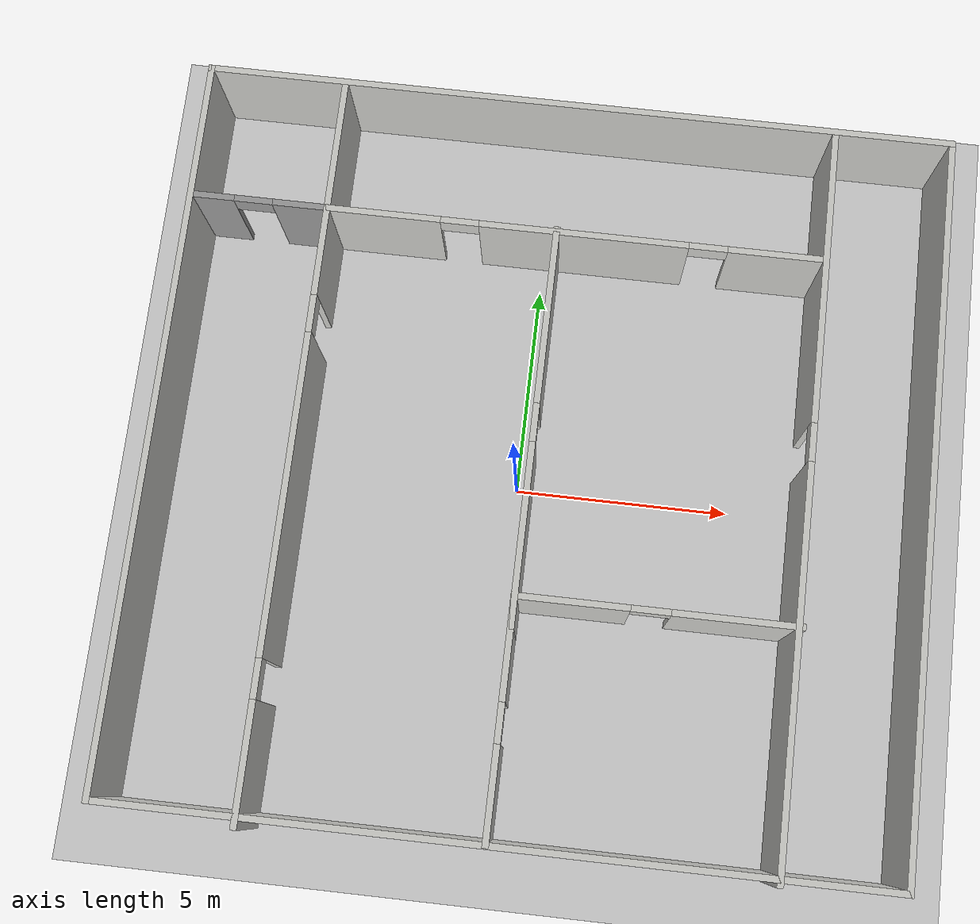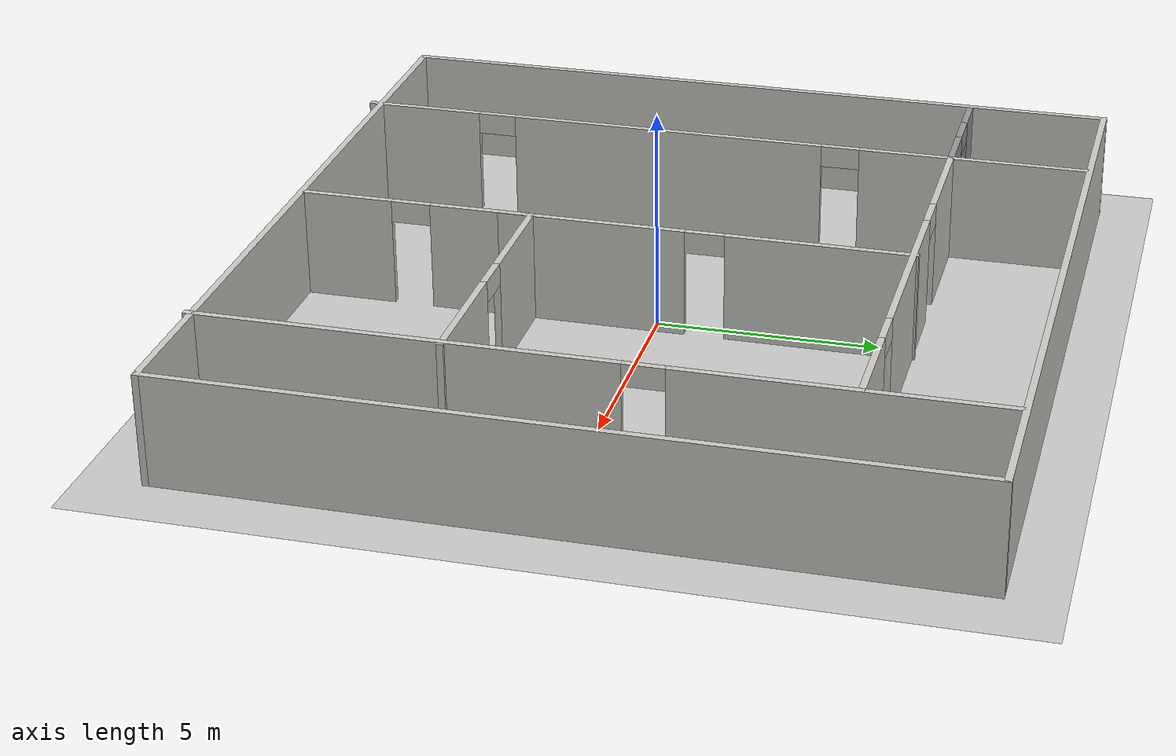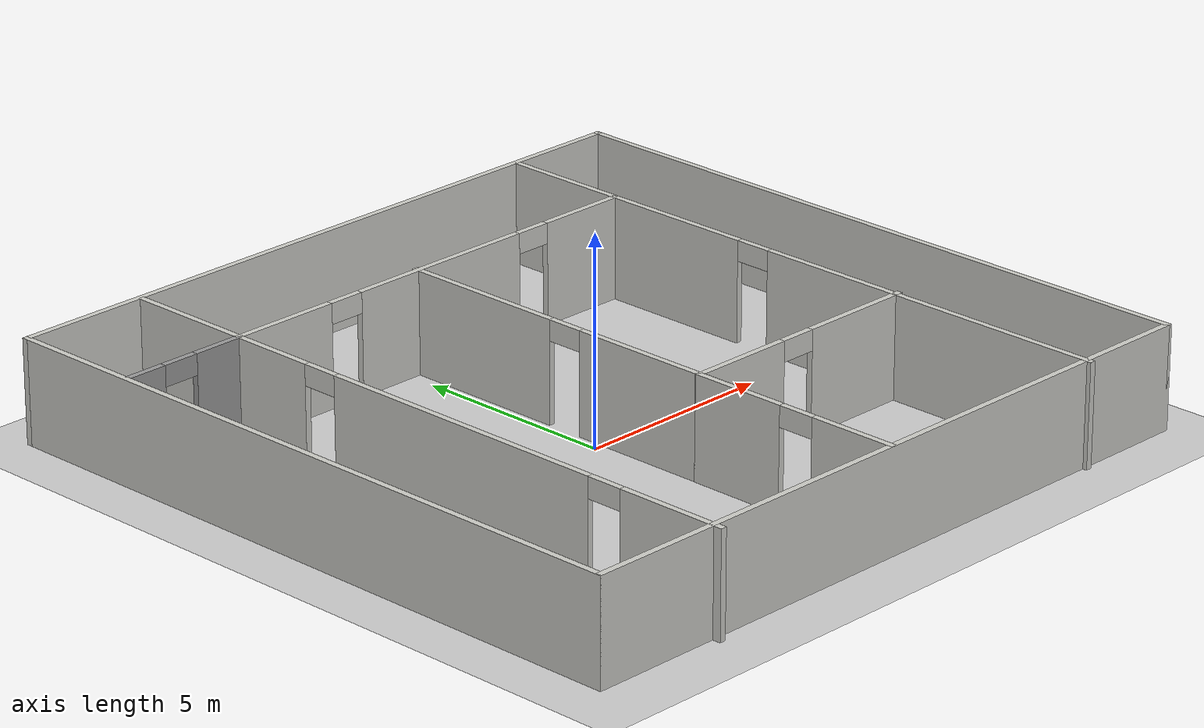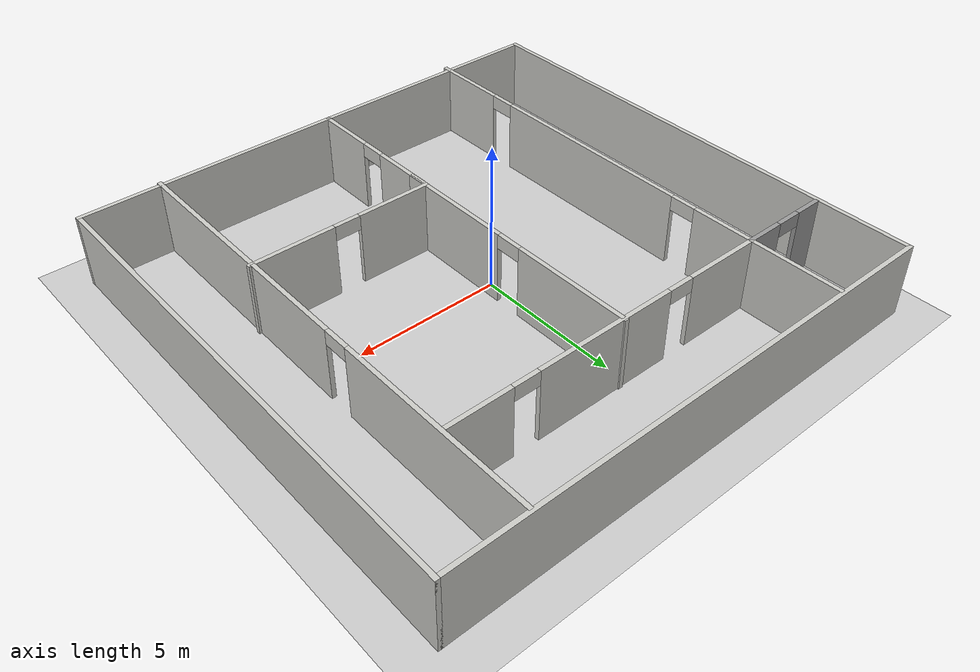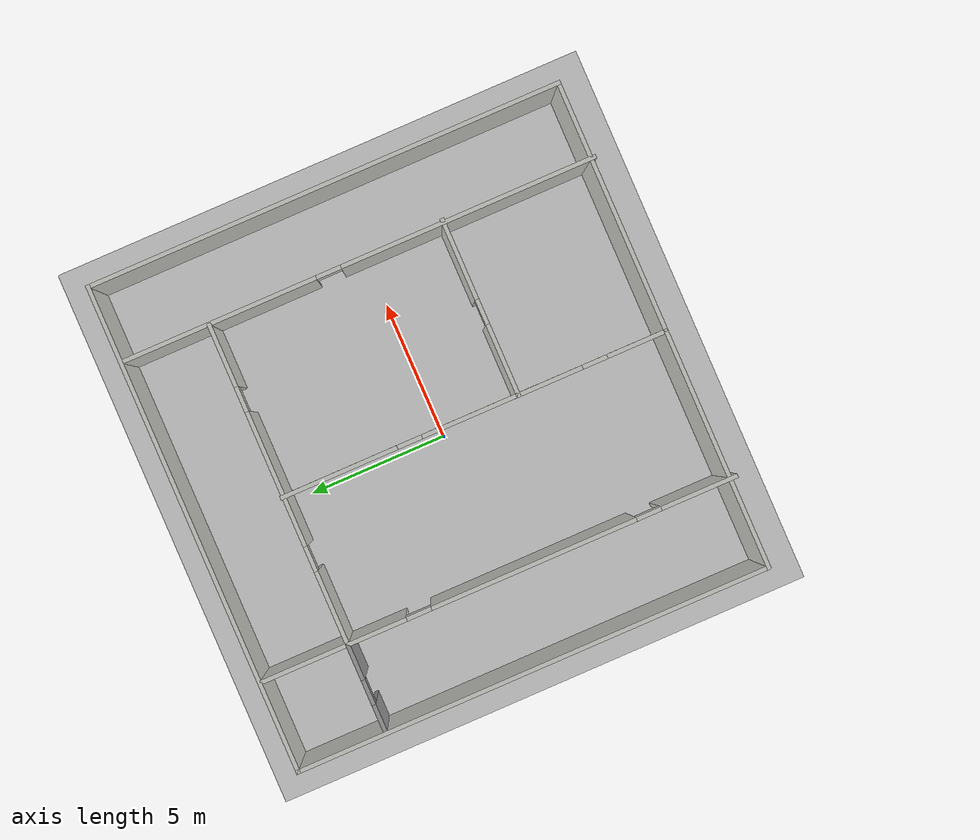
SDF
<sdf version="1.7">
 <world name="default">
  <light name="sun" type="directional">
   <pose>0 0 10 0 -0 0</pose>
   <diffuse>0.8 0.8 0.8 1</diffuse>
   <specular>0.2 0.2 0.2 1</specular>
   <attenuation>
    <range>1000</range>
    <constant>0.9</constant>
    <linear>0.01</linear>
    <quadratic>0.001</quadratic>
   </attenuation>
   <direction>-0.5 0.1 -0.9</direction>
   <spot><inner_angle>0</inner_angle><outer_angle>0</outer_angle><falloff>0</falloff></spot>
  </light>
  <model name="ground_plane">
   <static>1</static>
   <link name="link">
    <collision name="collision">
     <geometry><plane><normal>0 0 1</normal><size>100 100</size></plane></geometry>
     <surface><friction><ode><mu>100</mu><mu2>50</mu2></ode></friction></surface>
    </collision>
    <visual name="visual">
     <cast_shadows>0</cast_shadows>
     <geometry><plane><normal>0 0 1</normal><size>100 100</size></plane></geometry>
     <material>
      <script><uri>file://media/materials/scripts/gazebo.material</uri><name>Gazebo/Grey</name></script>
     </material>
    </visual>
   </link>
  </model>
  <gravity>0 0 -9.8</gravity>
  <magnetic_field>6e-06 2.3e-05 -4.2e-05</magnetic_field>
  <atmosphere type="adiabatic"/>
  <physics type="ode">
   <max_step_size>0.001</max_step_size>
   <real_time_factor>1</real_time_factor>
   <real_time_update_rate>1000</real_time_update_rate>
  </physics>
  <scene><ambient>0.4 0.4 0.4 1</ambient><background>0.7 0.7 0.7 1</background><shadows>1</shadows></scene>
  <spherical_coordinates>
   <surface_model>EARTH_WGS84</surface_model>
   <latitude_deg>0</latitude_deg>
   <longitude_deg>0</longitude_deg>
   <elevation>0</elevation>
   <heading_deg>0</heading_deg>
  </spherical_coordinates>
  <model name="jamworldp">
   <pose>0.508812 0.273361 0 0 -0 0</pose>
   <link name="Wall_29">
    <collision name="Wall_29_Collision">
     <geometry><box><size>17.75 0.15 2.5</size></box></geometry>
     <pose>0 0 1.25 0 -0 0</pose>
    </collision>
    <visual name="Wall_29_Visual">
     <pose>0 0 1.25 0 -0 0</pose>
     <geometry><box><size>17.75 0.15 2.5</size></box></geometry>
     <material>
      <script><uri>file://media/materials/scripts/gazebo.material</uri><name>Gazebo/CeilingTiled</name></script>
      <ambient>1 1 1 1</ambient>
     </material>
     <meta><layer>0</layer></meta>
    </visual>
    <pose>-0 8.65066 0 0 -0 0</pose>
   </link>
   <link name="Wall_31">
    <collision name="Wall_31_Collision">
     <geometry><box><size>17.25 0.15 2.5</size></box></geometry>
     <pose>0 0 1.25 0 -0 0</pose>
    </collision>
    <visual name="Wall_31_Visual">
     <pose>0 0 1.25 0 -0 0</pose>
     <geometry><box><size>17.25 0.15 2.5</size></box></geometry>
     <material>
      <script><uri>file://media/materials/scripts/gazebo.material</uri><name>Gazebo/CeilingTiled</name></script>
      <ambient>1 1 1 1</ambient>
     </material>
     <meta><layer>0</layer></meta>
    </visual>
    <pose>8.8 0.100659 0 0 -0 -1.5708</pose>
   </link>
   <link name="Wall_35">
    <collision name="Wall_35_Collision">
     <geometry><box><size>17.25 0.15 2.5</size></box></geometry>
     <pose>0 0 1.25 0 -0 0</pose>
    </collision>
    <visual name="Wall_35_Visual">
     <pose>0 0 1.25 0 -0 0</pose>
     <geometry><box><size>17.25 0.15 2.5</size></box></geometry>
     <material>
      <script><uri>file://media/materials/scripts/gazebo.material</uri><name>Gazebo/CeilingTiled</name></script>
      <ambient>1 1 1 1</ambient>
     </material>
     <meta><layer>0</layer></meta>
    </visual>
    <pose>-8.8 0.100659 0 0 -0 -1.5708</pose>
   </link>
   <link name="Wall_36">
    <collision name="Wall_36_Collision">
     <geometry><box><size>17.75 0.15 2.5</size></box></geometry>
     <pose>0 0 1.25 0 -0 0</pose>
    </collision>
    <visual name="Wall_36_Visual">
     <pose>0 0 1.25 0 -0 0</pose>
     <geometry><box><size>17.75 0.15 2.5</size></box></geometry>
     <material>
      <script><uri>file://media/materials/scripts/gazebo.material</uri><name>Gazebo/CeilingTiled</name></script>
      <ambient>1 1 1 1</ambient>
     </material>
     <meta><layer>0</layer></meta>
    </visual>
    <pose>-0 -8.44934 0 0 -0 0</pose>
   </link>
   <link name="Wall_39">
    <pose>6.05803 -0.003168 0 0 -0 -1.5708</pose>
    <visual name="Wall_39_Visual_0">
     <pose>-5.08884 0 1.25 0 -0 0</pose>
     <geometry><box><size>7.07231 0.15 2.5</size></box></geometry>
     <material>
      <script><uri>file://media/materials/scripts/gazebo.material</uri><name>Gazebo/CeilingTiled</name></script>
      <ambient>1 1 1 1</ambient>
     </material>
     <meta><layer>0</layer></meta>
    </visual>
    <collision name="Wall_39_Collision_0">
     <geometry><box><size>7.07231 0.15 2.5</size></box></geometry>
     <pose>-5.08884 0 1.25 0 -0 0</pose>
    </collision>
    <visual name="Wall_39_Visual_1">
     <pose>3.98616 0 1.25 0 -0 0</pose>
     <geometry><box><size>9.27769 0.15 2.5</size></box></geometry>
     <material>
      <script><uri>file://media/materials/scripts/gazebo.material</uri><name>Gazebo/CeilingTiled</name></script>
      <ambient>1 1 1 1</ambient>
     </material>
     <meta><layer>0</layer></meta>
    </visual>
    <collision name="Wall_39_Collision_1">
     <geometry><box><size>9.27769 0.15 2.5</size></box></geometry>
     <pose>3.98616 0 1.25 0 -0 0</pose>
    </collision>
    <visual name="Wall_39_Visual_2">
     <pose>-1.10269 0 2.25 0 -0 0</pose>
     <geometry><box><size>0.9 0.15 0.5</size></box></geometry>
     <material>
      <script><uri>file://media/materials/scripts/gazebo.material</uri><name>Gazebo/CeilingTiled</name></script>
      <ambient>1 1 1 1</ambient>
     </material>
     <meta><layer>0</layer></meta>
    </visual>
    <collision name="Wall_39_Collision_2">
     <geometry><box><size>0.9 0.15 0.5</size></box></geometry>
     <pose>-1.10269 0 2.25 0 -0 0</pose>
    </collision>
   </link>
   <link name="Wall_41">
    <pose>-0.217405 -5.75402 0 0 -0 1.5708</pose>
    <visual name="Wall_41_Visual_0">
     <pose>-1.65323 0 1.25 0 -0 0</pose>
     <geometry><box><size>2.19354 0.15 2.5</size></box></geometry>
     <material>
      <script><uri>file://media/materials/scripts/gazebo.material</uri><name>Gazebo/CeilingTiled</name></script>
      <ambient>1 1 1 1</ambient>
     </material>
     <meta><layer>0</layer></meta>
    </visual>
    <collision name="Wall_41_Collision_0">
     <geometry><box><size>2.19354 0.15 2.5</size></box></geometry>
     <pose>-1.65323 0 1.25 0 -0 0</pose>
    </collision>
    <visual name="Wall_41_Visual_1">
     <pose>1.54677 0 1.25 0 -0 0</pose>
     <geometry><box><size>2.40646 0.15 2.5</size></box></geometry>
     <material>
      <script><uri>file://media/materials/scripts/gazebo.material</uri><name>Gazebo/CeilingTiled</name></script>
      <ambient>1 1 1 1</ambient>
     </material>
     <meta><layer>0</layer></meta>
    </visual>
    <collision name="Wall_41_Collision_1">
     <geometry><box><size>2.40646 0.15 2.5</size></box></geometry>
     <pose>1.54677 0 1.25 0 -0 0</pose>
    </collision>
    <visual name="Wall_41_Visual_2">
     <pose>-0.106458 0 2.25 0 -0 0</pose>
     <geometry><box><size>0.9 0.15 0.5</size></box></geometry>
     <material>
      <script><uri>file://media/materials/scripts/gazebo.material</uri><name>Gazebo/CeilingTiled</name></script>
      <ambient>1 1 1 1</ambient>
     </material>
     <meta><layer>0</layer></meta>
    </visual>
    <collision name="Wall_41_Collision_2">
     <geometry><box><size>0.9 0.15 0.5</size></box></geometry>
     <pose>-0.106458 0 2.25 0 -0 0</pose>
    </collision>
   </link>
   <link name="Wall_42">
    <pose>2.95759 -3.07902 0 0 -0 0</pose>
    <visual name="Wall_42_Visual_0">
     <pose>-1.92496 0 1.25 0 -0 0</pose>
     <geometry><box><size>2.65009 0.15 2.5</size></box></geometry>
     <material>
      <script><uri>file://media/materials/scripts/gazebo.material</uri><name>Gazebo/CeilingTiled</name></script>
      <ambient>1 1 1 1</ambient>
     </material>
     <meta><layer>0</layer></meta>
    </visual>
    <collision name="Wall_42_Collision_0">
     <geometry><box><size>2.65009 0.15 2.5</size></box></geometry>
     <pose>-1.92496 0 1.25 0 -0 0</pose>
    </collision>
    <visual name="Wall_42_Visual_1">
     <pose>1.77504 0 1.25 0 -0 0</pose>
     <geometry><box><size>2.94991 0.15 2.5</size></box></geometry>
     <material>
      <script><uri>file://media/materials/scripts/gazebo.material</uri><name>Gazebo/CeilingTiled</name></script>
      <ambient>1 1 1 1</ambient>
     </material>
     <meta><layer>0</layer></meta>
    </visual>
    <collision name="Wall_42_Collision_1">
     <geometry><box><size>2.94991 0.15 2.5</size></box></geometry>
     <pose>1.77504 0 1.25 0 -0 0</pose>
    </collision>
    <visual name="Wall_42_Visual_2">
     <pose>-0.149912 0 2.25 0 -0 0</pose>
     <geometry><box><size>0.9 0.15 0.5</size></box></geometry>
     <material>
      <script><uri>file://media/materials/scripts/gazebo.material</uri><name>Gazebo/CeilingTiled</name></script>
      <ambient>1 1 1 1</ambient>
     </material>
     <meta><layer>0</layer></meta>
    </visual>
    <collision name="Wall_42_Collision_2">
     <geometry><box><size>0.9 0.15 0.5</size></box></geometry>
     <pose>-0.149912 0 2.25 0 -0 0</pose>
    </collision>
   </link>
   <link name="Wall_44">
    <pose>0.217802 5.44934 0 0 -0 3.14159</pose>
    <visual name="Wall_44_Visual_0">
     <pose>-4.71744 0 1.25 0 -0 0</pose>
     <geometry><box><size>2.31512 0.15 2.5</size></box></geometry>
     <material>
      <script><uri>file://media/materials/scripts/gazebo.material</uri><name>Gazebo/CeilingTiled</name></script>
      <ambient>1 1 1 1</ambient>
     </material>
     <meta><layer>0</layer></meta>
    </visual>
    <collision name="Wall_44_Collision_0">
     <geometry><box><size>2.31512 0.15 2.5</size></box></geometry>
     <pose>-4.71744 0 1.25 0 -0 0</pose>
    </collision>
    <visual name="Wall_44_Visual_1">
     <pose>-0.209881 0 1.25 0 -0 0</pose>
     <geometry><box><size>4.9 0.15 2.5</size></box></geometry>
     <material>
      <script><uri>file://media/materials/scripts/gazebo.material</uri><name>Gazebo/CeilingTiled</name></script>
      <ambient>1 1 1 1</ambient>
     </material>
     <meta><layer>0</layer></meta>
    </visual>
    <collision name="Wall_44_Collision_1">
     <geometry><box><size>4.9 0.15 2.5</size></box></geometry>
     <pose>-0.209881 0 1.25 0 -0 0</pose>
    </collision>
    <visual name="Wall_44_Visual_2">
     <pose>4.50756 0 1.25 0 -0 0</pose>
     <geometry><box><size>2.73488 0.15 2.5</size></box></geometry>
     <material>
      <script><uri>file://media/materials/scripts/gazebo.material</uri><name>Gazebo/CeilingTiled</name></script>
      <ambient>1 1 1 1</ambient>
     </material>
     <meta><layer>0</layer></meta>
    </visual>
    <collision name="Wall_44_Collision_2">
     <geometry><box><size>2.73488 0.15 2.5</size></box></geometry>
     <pose>4.50756 0 1.25 0 -0 0</pose>
    </collision>
    <visual name="Wall_44_Visual_3">
     <pose>-3.10988 0 2.25 0 -0 0</pose>
     <geometry><box><size>0.9 0.15 0.5</size></box></geometry>
     <material>
      <script><uri>file://media/materials/scripts/gazebo.material</uri><name>Gazebo/CeilingTiled</name></script>
      <ambient>1 1 1 1</ambient>
     </material>
     <meta><layer>0</layer></meta>
    </visual>
    <collision name="Wall_44_Collision_3">
     <geometry><box><size>0.9 0.15 0.5</size></box></geometry>
     <pose>-3.10988 0 2.25 0 -0 0</pose>
    </collision>
    <visual name="Wall_44_Visual_4">
     <pose>2.69012 0 2.25 0 -0 0</pose>
     <geometry><box><size>0.9 0.15 0.5</size></box></geometry>
     <material>
      <script><uri>file://media/materials/scripts/gazebo.material</uri><name>Gazebo/CeilingTiled</name></script>
      <ambient>1 1 1 1</ambient>
     </material>
     <meta><layer>0</layer></meta>
    </visual>
    <collision name="Wall_44_Collision_4">
     <geometry><box><size>0.9 0.15 0.5</size></box></geometry>
     <pose>2.69012 0 2.25 0 -0 0</pose>
    </collision>
   </link>
   <link name="Wall_45">
    <collision name="Wall_45_Collision">
     <geometry><box><size>3.25 0.15 2.5</size></box></geometry>
     <pose>0 0 1.25 0 -0 0</pose>
    </collision>
    <visual name="Wall_45_Visual">
     <pose>0 0 1.25 0 -0 0</pose>
     <geometry><box><size>3.25 0.15 2.5</size></box></geometry>
     <material>
      <script><uri>file://media/materials/scripts/gazebo.material</uri><name>Gazebo/CeilingTiled</name></script>
      <ambient>1 1 1 1</ambient>
     </material>
     <meta><layer>0</layer></meta>
    </visual>
    <pose>-5.5822 6.99934 0 0 -0 1.5708</pose>
   </link>
   <link name="Wall_47">
    <pose>-5.5822 -1.60066 0 0 -0 -1.5708</pose>
    <visual name="Wall_47_Visual_0">
     <pose>-6.01759 0 1.25 0 -0 0</pose>
     <geometry><box><size>2.21482 0.15 2.5</size></box></geometry>
     <material>
      <script><uri>file://media/materials/scripts/gazebo.material</uri><name>Gazebo/CeilingTiled</name></script>
      <ambient>1 1 1 1</ambient>
     </material>
     <meta><layer>0</layer></meta>
    </visual>
    <collision name="Wall_47_Collision_0">
     <geometry><box><size>2.21482 0.15 2.5</size></box></geometry>
     <pose>-6.01759 0 1.25 0 -0 0</pose>
    </collision>
    <visual name="Wall_47_Visual_1">
     <pose>-0.280177 0 1.25 0 -0 0</pose>
     <geometry><box><size>7.46 0.15 2.5</size></box></geometry>
     <material>
      <script><uri>file://media/materials/scripts/gazebo.material</uri><name>Gazebo/CeilingTiled</name></script>
      <ambient>1 1 1 1</ambient>
     </material>
     <meta><layer>0</layer></meta>
    </visual>
    <collision name="Wall_47_Collision_1">
     <geometry><box><size>7.46 0.15 2.5</size></box></geometry>
     <pose>-0.280177 0 1.25 0 -0 0</pose>
    </collision>
    <visual name="Wall_47_Visual_2">
     <pose>5.73741 0 1.25 0 -0 0</pose>
     <geometry><box><size>2.77518 0.15 2.5</size></box></geometry>
     <material>
      <script><uri>file://media/materials/scripts/gazebo.material</uri><name>Gazebo/CeilingTiled</name></script>
      <ambient>1 1 1 1</ambient>
     </material>
     <meta><layer>0</layer></meta>
    </visual>
    <collision name="Wall_47_Collision_2">
     <geometry><box><size>2.77518 0.15 2.5</size></box></geometry>
     <pose>5.73741 0 1.25 0 -0 0</pose>
    </collision>
    <visual name="Wall_47_Visual_3">
     <pose>-4.46018 0 2.25 0 -0 0</pose>
     <geometry><box><size>0.9 0.15 0.5</size></box></geometry>
     <material>
      <script><uri>file://media/materials/scripts/gazebo.material</uri><name>Gazebo/CeilingTiled</name></script>
      <ambient>1 1 1 1</ambient>
     </material>
     <meta><layer>0</layer></meta>
    </visual>
    <collision name="Wall_47_Collision_3">
     <geometry><box><size>0.9 0.15 0.5</size></box></geometry>
     <pose>-4.46018 0 2.25 0 -0 0</pose>
    </collision>
    <visual name="Wall_47_Visual_4">
     <pose>3.89982 0 2.25 0 -0 0</pose>
     <geometry><box><size>0.9 0.15 0.5</size></box></geometry>
     <material>
      <script><uri>file://media/materials/scripts/gazebo.material</uri><name>Gazebo/CeilingTiled</name></script>
      <ambient>1 1 1 1</ambient>
     </material>
     <meta><layer>0</layer></meta>
    </visual>
    <collision name="Wall_47_Collision_4">
     <geometry><box><size>0.9 0.15 0.5</size></box></geometry>
     <pose>3.89982 0 2.25 0 -0 0</pose>
    </collision>
   </link>
   <link name="Wall_49">
    <pose>-7.1322 5.44934 0 0 -0 3.14159</pose>
    <visual name="Wall_49_Visual_0">
     <pose>-0.94744 0 1.25 0 -0 0</pose>
     <geometry><box><size>1.35512 0.15 2.5</size></box></geometry>
     <material>
      <script><uri>file://media/materials/scripts/gazebo.material</uri><name>Gazebo/Grey</name></script>
      <ambient>1 1 1 1</ambient>
     </material>
     <meta><layer>0</layer></meta>
    </visual>
    <collision name="Wall_49_Collision_0">
     <geometry><box><size>1.35512 0.15 2.5</size></box></geometry>
     <pose>-0.94744 0 1.25 0 -0 0</pose>
    </collision>
    <visual name="Wall_49_Visual_1">
     <pose>1.12756 0 1.25 0 -0 0</pose>
     <geometry><box><size>0.99488 0.15 2.5</size></box></geometry>
     <material>
      <script><uri>file://media/materials/scripts/gazebo.material</uri><name>Gazebo/Grey</name></script>
      <ambient>1 1 1 1</ambient>
     </material>
     <meta><layer>0</layer></meta>
    </visual>
    <collision name="Wall_49_Collision_1">
     <geometry><box><size>0.99488 0.15 2.5</size></box></geometry>
     <pose>1.12756 0 1.25 0 -0 0</pose>
    </collision>
    <visual name="Wall_49_Visual_2">
     <pose>0.18012 0 2.25 0 -0 0</pose>
     <geometry><box><size>0.9 0.15 0.5</size></box></geometry>
     <material>
      <script><uri>file://media/materials/scripts/gazebo.material</uri><name>Gazebo/Grey</name></script>
      <ambient>1 1 1 1</ambient>
     </material>
     <meta><layer>0</layer></meta>
    </visual>
    <collision name="Wall_49_Collision_2">
     <geometry><box><size>0.9 0.15 0.5</size></box></geometry>
     <pose>0.18012 0 2.25 0 -0 0</pose>
    </collision>
   </link>
   <link name="Wall_50">
    <pose>-0.21 0.72 0 0 0 -1.5708</pose>
    <visual name="Wall_50_Visual_0">
     <pose>-2.725 0 1.25 0 -0 0</pose>
     <geometry><box><size>4.25 0.15 2.5</size></box></geometry>
     <material>
      <script><uri>file://media/materials/scripts/gazebo.material</uri><name>Gazebo/CeilingTiled</name></script>
     </material>
    </visual>
    <collision name="Wall_50_Collision_0">
     <pose>-2.725 0 1.25 0 -0 0</pose>
     <geometry><box><size>4.25 0.15 2.5</size></box></geometry>
    </collision>
    <visual name="Wall_50_Visual_1">
     <pose>2.425 0 1.25 0 -0 0</pose>
     <geometry><box><size>4.25 0.15 2.5</size></box></geometry>
     <material>
      <script><uri>file://media/materials/scripts/gazebo.material</uri><name>Gazebo/CeilingTiled</name></script>
     </material>
    </visual>
    <collision name="Wall_50_Collision_1">
     <pose>2.425 0 1.25 0 -0 0</pose>
     <geometry><box><size>4.25 0.15 2.5</size></box></geometry>
    </collision>
    <visual name="Wall_50_Visual_2">
     <pose>-0.15 0 2.25 0 -0 0</pose>
     <geometry><box><size>0.9 0.15 0.5</size></box></geometry>
     <material>
      <script><uri>file://media/materials/scripts/gazebo.material</uri><name>Gazebo/CeilingTiled</name></script>
     </material>
    </visual>
    <collision name="Wall_50_Collision_2">
     <pose>-0.15 0 2.25 0 -0 0</pose>
     <geometry><box><size>0.9 0.15 0.5</size></box></geometry>
    </collision>
   </link>
   <static>1</static>
  </model>
 </world>
</sdf>
